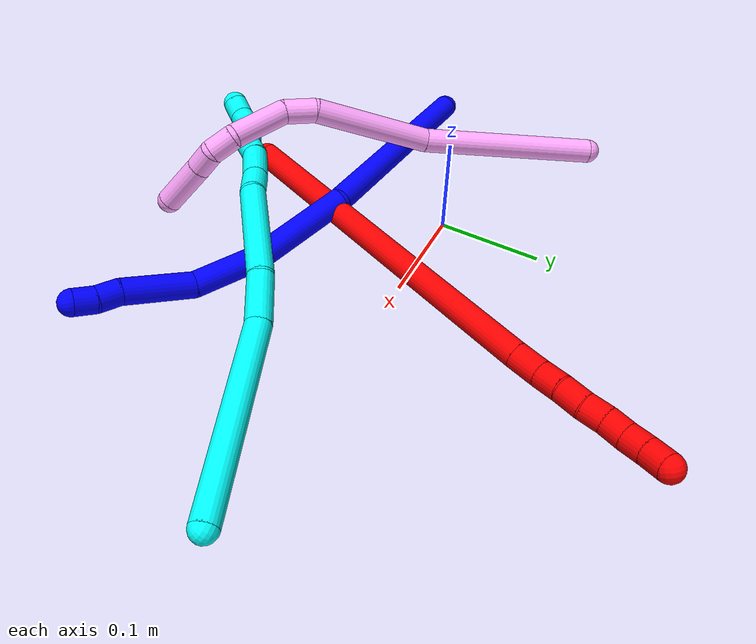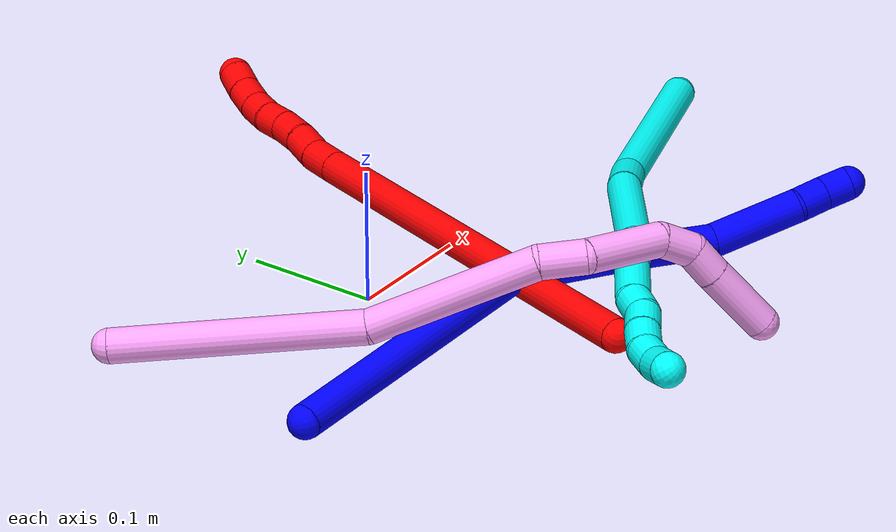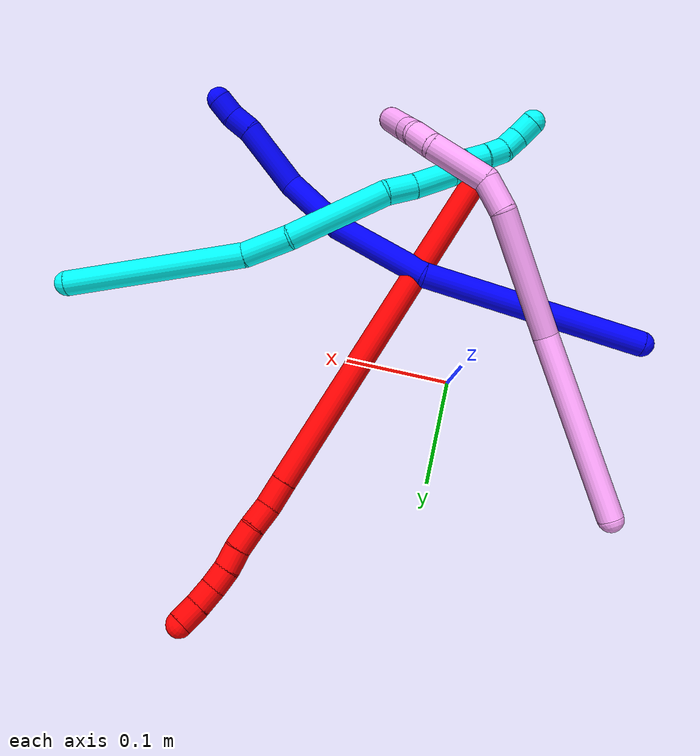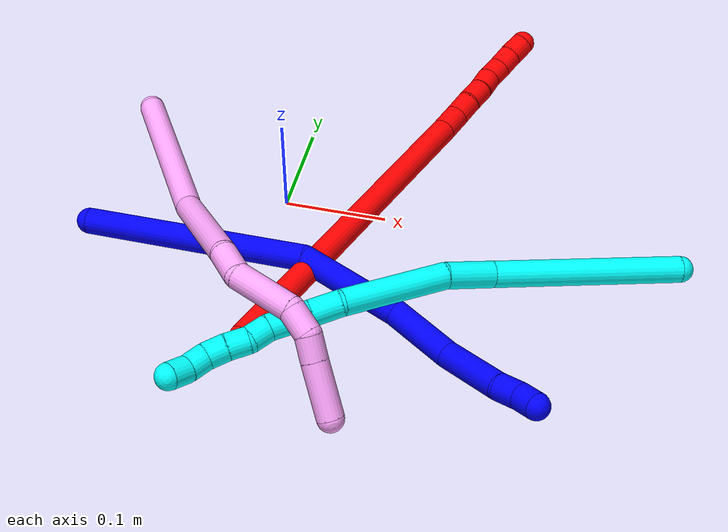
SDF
<sdf version="1.7">
 <world name="default">
  <plugin name="TubeGeneratorPlugin" filename="libtube_generator_plugin.so"/>
  <model name="photoneo_s_sensor">
   <static>1</static>
   <pose>0 0 2 1.57079 1.57079 3.14159</pose>
   <link name="link">
    <inertial><mass>0.1</mass></inertial>
    <sensor name="sensor" type="depth">
     <update_rate>30</update_rate>
     <camera>
      <horizontal_fov>1.22</horizontal_fov>
      <image><width>1920</width><height>1200</height><format>B8G8R8</format></image>
      <clip><near>0.1</near><far>4</far></clip>
      <depth_camera><output>points</output></depth_camera>
     </camera>
     <plugin name="camera_plugin" filename="libgazebo_ros_depth_camera.so">
      <baseline>0.2</baseline>
      <alwaysOn>1</alwaysOn>
      <updateRate>0.0</updateRate>
      <cameraName>camera_ir</cameraName>
      <imageTopicName>/camera/color/image_raw</imageTopicName>
      <cameraInfoTopicName>/camera/color/camera_info</cameraInfoTopicName>
      <depthImageTopicName>/camera/depth/image_raw</depthImageTopicName>
      <depthImageCameraInfoTopicName>/camera/depth/camera_info</depthImageCameraInfoTopicName>
      <pointCloudTopicName>/camera/depth/points</pointCloudTopicName>
      <frameName>fr_optical</frameName>
      <pointCloudCutoff>0.1</pointCloudCutoff>
      <pointCloudCutoffMax>2.0</pointCloudCutoffMax>
      <distortionK1>0</distortionK1>
      <distortionK2>0</distortionK2>
      <distortionK3>0</distortionK3>
      <distortionT1>0</distortionT1>
      <distortionT2>0</distortionT2>
      <CxPrime>0</CxPrime>
      <Cx>0</Cx>
      <Cy>0</Cy>
      <focalLength>0</focalLength>
      <hackBaseline>0</hackBaseline>
     </plugin>
    </sensor>
   </link>
  </model>
  <gravity>0 0 -9.8</gravity>
  <magnetic_field>6e-06 2.3e-05 -4.2e-05</magnetic_field>
  <atmosphere type="adiabatic"/>
  <physics name="default_physics" default="0" type="ode">
   <max_step_size>0.003</max_step_size>
   <real_time_factor>1</real_time_factor>
   <real_time_update_rate>1000</real_time_update_rate>
   <max_contacts>10000</max_contacts>
   <ode>
    <solver>
     <type>quick</type>
     <iters>100</iters>
     <sor>1.3</sor>
     <use_dynamic_moi_rescaling>0</use_dynamic_moi_rescaling>
    </solver>
    <constraints>
     <contact_max_correcting_vel>0</contact_max_correcting_vel>
     <contact_surface_layer>0.001</contact_surface_layer>
     <cfm>0</cfm>
     <erp>0.2</erp>
    </constraints>
   </ode>
  </physics>
  <scene><ambient>0.4 0.4 0.4 1</ambient><background>0.7 0.7 0.7 1</background><shadows>0</shadows></scene>
  <audio><device>default</device></audio>
  <spherical_coordinates>
   <surface_model>EARTH_WGS84</surface_model>
   <latitude_deg>0</latitude_deg>
   <longitude_deg>0</longitude_deg>
   <elevation>0</elevation>
   <heading_deg>0</heading_deg>
  </spherical_coordinates>
  <model name="bin">
   <static>1</static>
   <link name="bottom">
    <collision name="collision-bottom">
     <pose>0 0 -0.01 0 -0 0</pose>
     <geometry><box><size>0.8 0.6 0.02</size></box></geometry>
     <surface>
      <friction><ode><mu>100</mu><mu2>100</mu2></ode></friction>
      <contact><collide_bitmask>65535</collide_bitmask></contact>
     </surface>
    </collision>
   </link>
   <link name="west_wall">
    <collision name="collision-west_wall">
     <pose>-0.41 0 0.1 0 -0 0</pose>
     <geometry><box><size>0.02 0.6 0.2</size></box></geometry>
     <surface>
      <friction><ode><mu>100</mu><mu2>100</mu2></ode></friction>
      <contact><collide_bitmask>65535</collide_bitmask></contact>
     </surface>
    </collision>
   </link>
   <link name="east_wall">
    <collision name="collision-east_wall">
     <pose>0.41 0 0.1 0 -0 0</pose>
     <geometry><box><size>0.02 0.6 0.2</size></box></geometry>
     <surface>
      <friction><ode><mu>100</mu><mu2>100</mu2></ode></friction>
      <contact><collide_bitmask>65535</collide_bitmask></contact>
     </surface>
    </collision>
   </link>
   <link name="south_wall">
    <collision name="collision-south_wall">
     <pose>0 -0.31 0.1 0 -0 0</pose>
     <geometry><box><size>0.8 0.02 0.2</size></box></geometry>
     <surface>
      <friction><ode><mu>100</mu><mu2>100</mu2></ode></friction>
      <contact><collide_bitmask>65535</collide_bitmask></contact>
     </surface>
    </collision>
   </link>
   <link name="north_wall">
    <collision name="collision-north_wall">
     <pose>0 0.31 0.1 0 -0 0</pose>
     <geometry><box><size>0.8 0.02 0.2</size></box></geometry>
     <surface>
      <friction><ode><mu>100</mu><mu2>100</mu2></ode></friction>
      <contact><collide_bitmask>65535</collide_bitmask></contact>
     </surface>
    </collision>
   </link>
  </model>
  <model name="1">
   <static>0</static>
   <link name="1">
    <collision name="collision-cylinder-e_1_1_4">
     <pose>0.050739 -0.030626 0.093747 0.315758 0.475161 0.077066</pose>
     <geometry><cylinder><radius>0.0125</radius><length>0.22182</length></cylinder></geometry>
     <surface>
      <friction><ode><mu>1.16</mu><mu2>1.16</mu2><slip1>0</slip1><slip2>0</slip2></ode></friction>
      <contact><ode><kp>1e+06</kp><kd>1</kd><max_vel>0</max_vel><min_depth>0.001</min_depth></ode></contact>
     </surface>
    </collision>
    <visual name="visual-cylinder-e_1_1_4">
     <pose>0.050739 -0.030626 0.093747 0.315758 0.475161 0.077066</pose>
     <geometry><cylinder><radius>0.0125</radius><length>0.22182</length></cylinder></geometry>
     <material><ambient>0 0 1 1</ambient></material>
    </visual>
    <collision name="collision-cylinder-e_2_4_5">
     <pose>0.108204 -0.079982 0.234244 0.381054 0.132754 0.02564</pose>
     <geometry><cylinder><radius>0.0125</radius><length>0.101618</length></cylinder></geometry>
     <surface>
      <friction><ode><mu>1.16</mu><mu2>1.16</mu2><slip1>0</slip1><slip2>0</slip2></ode></friction>
      <contact><ode><kp>1e+06</kp><kd>1</kd><max_vel>0</max_vel><min_depth>0.001</min_depth></ode></contact>
     </surface>
    </collision>
    <visual name="visual-cylinder-e_2_4_5">
     <pose>0.108204 -0.079982 0.234244 0.381054 0.132754 0.02564</pose>
     <geometry><cylinder><radius>0.0125</radius><length>0.101618</length></cylinder></geometry>
     <material><ambient>0 0 1 1</ambient></material>
    </visual>
    <collision name="collision-cylinder-e_3_5_6">
     <pose>0.114311 -0.105829 0.313309 0.216801 -0.018674 -0.002032</pose>
     <geometry><cylinder><radius>0.0125</radius><length>0.066192</length></cylinder></geometry>
     <surface>
      <friction><ode><mu>1.16</mu><mu2>1.16</mu2><slip1>0</slip1><slip2>0</slip2></ode></friction>
      <contact><ode><kp>1e+06</kp><kd>1</kd><max_vel>0</max_vel><min_depth>0.001</min_depth></ode></contact>
     </surface>
    </collision>
    <visual name="visual-cylinder-e_3_5_6">
     <pose>0.114311 -0.105829 0.313309 0.216801 -0.018674 -0.002032</pose>
     <geometry><cylinder><radius>0.0125</radius><length>0.066192</length></cylinder></geometry>
     <material><ambient>0 0 1 1</ambient></material>
    </visual>
    <collision name="collision-cylinder-e_4_6_7">
     <pose>0.115019 -0.108582 0.379279 -0.128978 0.039044 -0.002522</pose>
     <geometry><cylinder><radius>0.0125</radius><length>0.067923</length></cylinder></geometry>
     <surface>
      <friction><ode><mu>1.16</mu><mu2>1.16</mu2><slip1>0</slip1><slip2>0</slip2></ode></friction>
      <contact><ode><kp>1e+06</kp><kd>1</kd><max_vel>0</max_vel><min_depth>0.001</min_depth></ode></contact>
     </surface>
    </collision>
    <visual name="visual-cylinder-e_4_6_7">
     <pose>0.115019 -0.108582 0.379279 -0.128978 0.039044 -0.002522</pose>
     <geometry><cylinder><radius>0.0125</radius><length>0.067923</length></cylinder></geometry>
     <material><ambient>0 0 1 1</ambient></material>
    </visual>
    <collision name="collision-cylinder-e_5_7_8">
     <pose>0.118451 -0.104849 0.423755 0.058264 0.1919 0.005609</pose>
     <geometry><cylinder><radius>0.0125</radius><length>0.022088</length></cylinder></geometry>
     <surface>
      <friction><ode><mu>1.16</mu><mu2>1.16</mu2><slip1>0</slip1><slip2>0</slip2></ode></friction>
      <contact><ode><kp>1e+06</kp><kd>1</kd><max_vel>0</max_vel><min_depth>0.001</min_depth></ode></contact>
     </surface>
    </collision>
    <visual name="visual-cylinder-e_5_7_8">
     <pose>0.118451 -0.104849 0.423755 0.058264 0.1919 0.005609</pose>
     <geometry><cylinder><radius>0.0125</radius><length>0.022088</length></cylinder></geometry>
     <material><ambient>0 0 1 1</ambient></material>
    </visual>
    <collision name="collision-cylinder-e_6_8_2">
     <pose>0.121071 -0.104326 0.444679 -0.113821 0.050502 -0.002878</pose>
     <geometry><cylinder><radius>0.0125</radius><length>0.020359</length></cylinder></geometry>
     <surface>
      <friction><ode><mu>1.16</mu><mu2>1.16</mu2><slip1>0</slip1><slip2>0</slip2></ode></friction>
      <contact><ode><kp>1e+06</kp><kd>1</kd><max_vel>0</max_vel><min_depth>0.001</min_depth></ode></contact>
     </surface>
    </collision>
    <visual name="visual-cylinder-e_6_8_2">
     <pose>0.121071 -0.104326 0.444679 -0.113821 0.050502 -0.002878</pose>
     <geometry><cylinder><radius>0.0125</radius><length>0.020359</length></cylinder></geometry>
     <material><ambient>0 0 1 1</ambient></material>
    </visual>
    <collision name="collision-sphere-2">
     <pose>0.121585 -0.103171 0.45478 0 -0 0</pose>
     <geometry><sphere><radius>0.0125</radius></sphere></geometry>
     <surface>
      <friction><ode><mu>1.16</mu><mu2>1.16</mu2><slip1>0</slip1><slip2>0</slip2></ode></friction>
      <contact><ode><kp>1e+06</kp><kd>1</kd><max_vel>0</max_vel><min_depth>0.001</min_depth></ode></contact>
     </surface>
    </collision>
    <visual name="visual-sphere-2">
     <pose>0.121585 -0.103171 0.45478 0 -0 0</pose>
     <geometry><sphere><radius>0.0125</radius></sphere></geometry>
     <material><ambient>0 0 1 1</ambient></material>
    </visual>
    <collision name="collision-sphere-4">
     <pose>0.101478 -0.061252 0.187495 0 -0 0</pose>
     <geometry><sphere><radius>0.0125</radius></sphere></geometry>
     <surface>
      <friction><ode><mu>1.16</mu><mu2>1.16</mu2><slip1>0</slip1><slip2>0</slip2></ode></friction>
      <contact><ode><kp>1e+06</kp><kd>1</kd><max_vel>0</max_vel><min_depth>0.001</min_depth></ode></contact>
     </surface>
    </collision>
    <visual name="visual-sphere-4">
     <pose>0.101478 -0.061252 0.187495 0 -0 0</pose>
     <geometry><sphere><radius>0.0125</radius></sphere></geometry>
     <material><ambient>0 0 1 1</ambient></material>
    </visual>
    <collision name="collision-sphere-1">
     <geometry><sphere><radius>0.0125</radius></sphere></geometry>
     <surface>
      <friction><ode><mu>1.16</mu><mu2>1.16</mu2><slip1>0</slip1><slip2>0</slip2></ode></friction>
      <contact><ode><kp>1e+06</kp><kd>1</kd><max_vel>0</max_vel><min_depth>0.001</min_depth></ode></contact>
     </surface>
    </collision>
    <visual name="visual-sphere-1">
     <geometry><sphere><radius>0.0125</radius></sphere></geometry>
     <material><ambient>0 0 1 1</ambient></material>
    </visual>
    <collision name="collision-sphere-8">
     <pose>0.120557 -0.10548 0.434578 0 -0 0</pose>
     <geometry><sphere><radius>0.0125</radius></sphere></geometry>
     <surface>
      <friction><ode><mu>1.16</mu><mu2>1.16</mu2><slip1>0</slip1><slip2>0</slip2></ode></friction>
      <contact><ode><kp>1e+06</kp><kd>1</kd><max_vel>0</max_vel><min_depth>0.001</min_depth></ode></contact>
     </surface>
    </collision>
    <visual name="visual-sphere-8">
     <pose>0.120557 -0.10548 0.434578 0 -0 0</pose>
     <geometry><sphere><radius>0.0125</radius></sphere></geometry>
     <material><ambient>0 0 1 1</ambient></material>
    </visual>
    <collision name="collision-sphere-5">
     <pose>0.114929 -0.098711 0.280994 0 -0 0</pose>
     <geometry><sphere><radius>0.0125</radius></sphere></geometry>
     <surface>
      <friction><ode><mu>1.16</mu><mu2>1.16</mu2><slip1>0</slip1><slip2>0</slip2></ode></friction>
      <contact><ode><kp>1e+06</kp><kd>1</kd><max_vel>0</max_vel><min_depth>0.001</min_depth></ode></contact>
     </surface>
    </collision>
    <visual name="visual-sphere-5">
     <pose>0.114929 -0.098711 0.280994 0 -0 0</pose>
     <geometry><sphere><radius>0.0125</radius></sphere></geometry>
     <material><ambient>0 0 1 1</ambient></material>
    </visual>
    <collision name="collision-sphere-6">
     <pose>0.113693 -0.112947 0.345625 0 -0 0</pose>
     <geometry><sphere><radius>0.0125</radius></sphere></geometry>
     <surface>
      <friction><ode><mu>1.16</mu><mu2>1.16</mu2><slip1>0</slip1><slip2>0</slip2></ode></friction>
      <contact><ode><kp>1e+06</kp><kd>1</kd><max_vel>0</max_vel><min_depth>0.001</min_depth></ode></contact>
     </surface>
    </collision>
    <visual name="visual-sphere-6">
     <pose>0.113693 -0.112947 0.345625 0 -0 0</pose>
     <geometry><sphere><radius>0.0125</radius></sphere></geometry>
     <material><ambient>0 0 1 1</ambient></material>
    </visual>
    <collision name="collision-sphere-7">
     <pose>0.116344 -0.104218 0.412932 0 -0 0</pose>
     <geometry><sphere><radius>0.0125</radius></sphere></geometry>
     <surface>
      <friction><ode><mu>1.16</mu><mu2>1.16</mu2><slip1>0</slip1><slip2>0</slip2></ode></friction>
      <contact><ode><kp>1e+06</kp><kd>1</kd><max_vel>0</max_vel><min_depth>0.001</min_depth></ode></contact>
     </surface>
    </collision>
    <visual name="visual-sphere-7">
     <pose>0.116344 -0.104218 0.412932 0 -0 0</pose>
     <geometry><sphere><radius>0.0125</radius></sphere></geometry>
     <material><ambient>0 0 1 1</ambient></material>
    </visual>
    <inertial>
     <pose>0.085421 -0.067483 0.219024 0 -0 0</pose>
     <mass>0.5</mass>
     <inertia>
      <ixx>0.001038</ixx>
      <ixy>0</ixy>
      <ixz>0</ixz>
      <iyy>0.00108</iyy>
      <iyz>0</iyz>
      <izz>-0.000108</izz>
     </inertia>
    </inertial>
   </link>
   <pose>-0.175721 -0.07811 0.01149 1.40634 -0.449482 1.007</pose>
  </model>
  <model name="2">
   <static>0</static>
   <link name="2">
    <collision name="collision-cylinder-e_1_1_4">
     <pose>-0.063031 0.119216 0.108255 -0.833544 -0.373085 0.166723</pose>
     <geometry><cylinder><radius>0.0125</radius><length>0.345859</length></cylinder></geometry>
     <surface>
      <friction><ode><mu>1.16</mu><mu2>1.16</mu2><slip1>0</slip1><slip2>0</slip2></ode></friction>
      <contact><ode><kp>1e+06</kp><kd>1</kd><max_vel>0</max_vel><min_depth>0.001</min_depth></ode></contact>
     </surface>
    </collision>
    <visual name="visual-cylinder-e_1_1_4">
     <pose>-0.063031 0.119216 0.108255 -0.833544 -0.373085 0.166723</pose>
     <geometry><cylinder><radius>0.0125</radius><length>0.345859</length></cylinder></geometry>
     <material><ambient>1 0 0 1</ambient></material>
    </visual>
    <collision name="collision-cylinder-e_2_4_5">
     <pose>-0.131091 0.247935 0.224534 -0.869705 -0.384253 0.180228</pose>
     <geometry><cylinder><radius>0.0125</radius><length>0.026832</length></cylinder></geometry>
     <surface>
      <friction><ode><mu>1.16</mu><mu2>1.16</mu2><slip1>0</slip1><slip2>0</slip2></ode></friction>
      <contact><ode><kp>1e+06</kp><kd>1</kd><max_vel>0</max_vel><min_depth>0.001</min_depth></ode></contact>
     </surface>
    </collision>
    <visual name="visual-cylinder-e_2_4_5">
     <pose>-0.131091 0.247935 0.224534 -0.869705 -0.384253 0.180228</pose>
     <geometry><cylinder><radius>0.0125</radius><length>0.026832</length></cylinder></geometry>
     <material><ambient>1 0 0 1</ambient></material>
    </visual>
    <collision name="collision-cylinder-e_3_5_6">
     <pose>-0.142287 0.265499 0.238066 -0.971217 -0.563404 0.303123</pose>
     <geometry><cylinder><radius>0.0125</radius><length>0.023094</length></cylinder></geometry>
     <surface>
      <friction><ode><mu>1.16</mu><mu2>1.16</mu2><slip1>0</slip1><slip2>0</slip2></ode></friction>
      <contact><ode><kp>1e+06</kp><kd>1</kd><max_vel>0</max_vel><min_depth>0.001</min_depth></ode></contact>
     </surface>
    </collision>
    <visual name="visual-cylinder-e_3_5_6">
     <pose>-0.142287 0.265499 0.238066 -0.971217 -0.563404 0.303123</pose>
     <geometry><cylinder><radius>0.0125</radius><length>0.023094</length></cylinder></geometry>
     <material><ambient>1 0 0 1</ambient></material>
    </visual>
    <collision name="collision-cylinder-e_4_6_7">
     <pose>-0.153435 0.281506 0.250286 -0.869521 -0.446538 0.210109</pose>
     <geometry><cylinder><radius>0.0125</radius><length>0.023067</length></cylinder></geometry>
     <surface>
      <friction><ode><mu>1.16</mu><mu2>1.16</mu2><slip1>0</slip1><slip2>0</slip2></ode></friction>
      <contact><ode><kp>1e+06</kp><kd>1</kd><max_vel>0</max_vel><min_depth>0.001</min_depth></ode></contact>
     </surface>
    </collision>
    <visual name="visual-cylinder-e_4_6_7">
     <pose>-0.153435 0.281506 0.250286 -0.869521 -0.446538 0.210109</pose>
     <geometry><cylinder><radius>0.0125</radius><length>0.023067</length></cylinder></geometry>
     <material><ambient>1 0 0 1</ambient></material>
    </visual>
    <collision name="collision-cylinder-e_5_7_8">
     <pose>-0.161722 0.297196 0.262667 -0.938715 -0.331875 0.169468</pose>
     <geometry><cylinder><radius>0.0125</radius><length>0.0203</length></cylinder></geometry>
     <surface>
      <friction><ode><mu>1.16</mu><mu2>1.16</mu2><slip1>0</slip1><slip2>0</slip2></ode></friction>
      <contact><ode><kp>1e+06</kp><kd>1</kd><max_vel>0</max_vel><min_depth>0.001</min_depth></ode></contact>
     </surface>
    </collision>
    <visual name="visual-cylinder-e_5_7_8">
     <pose>-0.161722 0.297196 0.262667 -0.938715 -0.331875 0.169468</pose>
     <geometry><cylinder><radius>0.0125</radius><length>0.0203</length></cylinder></geometry>
     <material><ambient>1 0 0 1</ambient></material>
    </visual>
    <collision name="collision-cylinder-e_6_8_9">
     <pose>-0.1698 0.311718 0.274048 -0.870801 -0.493665 0.233355</pose>
     <geometry><cylinder><radius>0.0125</radius><length>0.020134</length></cylinder></geometry>
     <surface>
      <friction><ode><mu>1.16</mu><mu2>1.16</mu2><slip1>0</slip1><slip2>0</slip2></ode></friction>
      <contact><ode><kp>1e+06</kp><kd>1</kd><max_vel>0</max_vel><min_depth>0.001</min_depth></ode></contact>
     </surface>
    </collision>
    <visual name="visual-cylinder-e_6_8_9">
     <pose>-0.1698 0.311718 0.274048 -0.870801 -0.493665 0.233355</pose>
     <geometry><cylinder><radius>0.0125</radius><length>0.020134</length></cylinder></geometry>
     <material><ambient>1 0 0 1</ambient></material>
    </visual>
    <collision name="collision-cylinder-e_7_9_10">
     <pose>-0.18067 0.325363 0.28413 -1.00371 -0.643244 0.361659</pose>
     <geometry><cylinder><radius>0.0125</radius><length>0.02034</length></cylinder></geometry>
     <surface>
      <friction><ode><mu>1.16</mu><mu2>1.16</mu2><slip1>0</slip1><slip2>0</slip2></ode></friction>
      <contact><ode><kp>1e+06</kp><kd>1</kd><max_vel>0</max_vel><min_depth>0.001</min_depth></ode></contact>
     </surface>
    </collision>
    <visual name="visual-cylinder-e_7_9_10">
     <pose>-0.18067 0.325363 0.28413 -1.00371 -0.643244 0.361659</pose>
     <geometry><cylinder><radius>0.0125</radius><length>0.02034</length></cylinder></geometry>
     <material><ambient>1 0 0 1</ambient></material>
    </visual>
    <collision name="collision-cylinder-e_8_10_2">
     <pose>-0.193554 0.338561 0.292701 -0.985392 -0.728737 0.403929</pose>
     <geometry><cylinder><radius>0.0125</radius><length>0.020375</length></cylinder></geometry>
     <surface>
      <friction><ode><mu>1.16</mu><mu2>1.16</mu2><slip1>0</slip1><slip2>0</slip2></ode></friction>
      <contact><ode><kp>1e+06</kp><kd>1</kd><max_vel>0</max_vel><min_depth>0.001</min_depth></ode></contact>
     </surface>
    </collision>
    <visual name="visual-cylinder-e_8_10_2">
     <pose>-0.193554 0.338561 0.292701 -0.985392 -0.728737 0.403929</pose>
     <geometry><cylinder><radius>0.0125</radius><length>0.020375</length></cylinder></geometry>
     <material><ambient>1 0 0 1</ambient></material>
    </visual>
    <collision name="collision-sphere-2">
     <pose>-0.200338 0.344896 0.2969 0 -0 0</pose>
     <geometry><sphere><radius>0.0125</radius></sphere></geometry>
     <surface>
      <friction><ode><mu>1.16</mu><mu2>1.16</mu2><slip1>0</slip1><slip2>0</slip2></ode></friction>
      <contact><ode><kp>1e+06</kp><kd>1</kd><max_vel>0</max_vel><min_depth>0.001</min_depth></ode></contact>
     </surface>
    </collision>
    <visual name="visual-sphere-2">
     <pose>-0.200338 0.344896 0.2969 0 -0 0</pose>
     <geometry><sphere><radius>0.0125</radius></sphere></geometry>
     <material><ambient>1 0 0 1</ambient></material>
    </visual>
    <collision name="collision-sphere-10">
     <pose>-0.18677 0.332227 0.288501 0 -0 0</pose>
     <geometry><sphere><radius>0.0125</radius></sphere></geometry>
     <surface>
      <friction><ode><mu>1.16</mu><mu2>1.16</mu2><slip1>0</slip1><slip2>0</slip2></ode></friction>
      <contact><ode><kp>1e+06</kp><kd>1</kd><max_vel>0</max_vel><min_depth>0.001</min_depth></ode></contact>
     </surface>
    </collision>
    <visual name="visual-sphere-10">
     <pose>-0.18677 0.332227 0.288501 0 -0 0</pose>
     <geometry><sphere><radius>0.0125</radius></sphere></geometry>
     <material><ambient>1 0 0 1</ambient></material>
    </visual>
    <collision name="collision-sphere-9">
     <pose>-0.17457 0.318499 0.279759 0 -0 0</pose>
     <geometry><sphere><radius>0.0125</radius></sphere></geometry>
     <surface>
      <friction><ode><mu>1.16</mu><mu2>1.16</mu2><slip1>0</slip1><slip2>0</slip2></ode></friction>
      <contact><ode><kp>1e+06</kp><kd>1</kd><max_vel>0</max_vel><min_depth>0.001</min_depth></ode></contact>
     </surface>
    </collision>
    <visual name="visual-sphere-9">
     <pose>-0.17457 0.318499 0.279759 0 -0 0</pose>
     <geometry><sphere><radius>0.0125</radius></sphere></geometry>
     <material><ambient>1 0 0 1</ambient></material>
    </visual>
    <collision name="collision-sphere-4">
     <pose>-0.126062 0.238431 0.216511 0 -0 0</pose>
     <geometry><sphere><radius>0.0125</radius></sphere></geometry>
     <surface>
      <friction><ode><mu>1.16</mu><mu2>1.16</mu2><slip1>0</slip1><slip2>0</slip2></ode></friction>
      <contact><ode><kp>1e+06</kp><kd>1</kd><max_vel>0</max_vel><min_depth>0.001</min_depth></ode></contact>
     </surface>
    </collision>
    <visual name="visual-sphere-4">
     <pose>-0.126062 0.238431 0.216511 0 -0 0</pose>
     <geometry><sphere><radius>0.0125</radius></sphere></geometry>
     <material><ambient>1 0 0 1</ambient></material>
    </visual>
    <collision name="collision-sphere-1">
     <geometry><sphere><radius>0.0125</radius></sphere></geometry>
     <surface>
      <friction><ode><mu>1.16</mu><mu2>1.16</mu2><slip1>0</slip1><slip2>0</slip2></ode></friction>
      <contact><ode><kp>1e+06</kp><kd>1</kd><max_vel>0</max_vel><min_depth>0.001</min_depth></ode></contact>
     </surface>
    </collision>
    <visual name="visual-sphere-1">
     <geometry><sphere><radius>0.0125</radius></sphere></geometry>
     <material><ambient>1 0 0 1</ambient></material>
    </visual>
    <collision name="collision-sphere-8">
     <pose>-0.165029 0.304938 0.268337 0 -0 0</pose>
     <geometry><sphere><radius>0.0125</radius></sphere></geometry>
     <surface>
      <friction><ode><mu>1.16</mu><mu2>1.16</mu2><slip1>0</slip1><slip2>0</slip2></ode></friction>
      <contact><ode><kp>1e+06</kp><kd>1</kd><max_vel>0</max_vel><min_depth>0.001</min_depth></ode></contact>
     </surface>
    </collision>
    <visual name="visual-sphere-8">
     <pose>-0.165029 0.304938 0.268337 0 -0 0</pose>
     <geometry><sphere><radius>0.0125</radius></sphere></geometry>
     <material><ambient>1 0 0 1</ambient></material>
    </visual>
    <collision name="collision-sphere-5">
     <pose>-0.136121 0.25744 0.232557 0 -0 0</pose>
     <geometry><sphere><radius>0.0125</radius></sphere></geometry>
     <surface>
      <friction><ode><mu>1.16</mu><mu2>1.16</mu2><slip1>0</slip1><slip2>0</slip2></ode></friction>
      <contact><ode><kp>1e+06</kp><kd>1</kd><max_vel>0</max_vel><min_depth>0.001</min_depth></ode></contact>
     </surface>
    </collision>
    <visual name="visual-sphere-5">
     <pose>-0.136121 0.25744 0.232557 0 -0 0</pose>
     <geometry><sphere><radius>0.0125</radius></sphere></geometry>
     <material><ambient>1 0 0 1</ambient></material>
    </visual>
    <collision name="collision-sphere-6">
     <pose>-0.148454 0.273559 0.243575 0 -0 0</pose>
     <geometry><sphere><radius>0.0125</radius></sphere></geometry>
     <surface>
      <friction><ode><mu>1.16</mu><mu2>1.16</mu2><slip1>0</slip1><slip2>0</slip2></ode></friction>
      <contact><ode><kp>1e+06</kp><kd>1</kd><max_vel>0</max_vel><min_depth>0.001</min_depth></ode></contact>
     </surface>
    </collision>
    <visual name="visual-sphere-6">
     <pose>-0.148454 0.273559 0.243575 0 -0 0</pose>
     <geometry><sphere><radius>0.0125</radius></sphere></geometry>
     <material><ambient>1 0 0 1</ambient></material>
    </visual>
    <collision name="collision-sphere-7">
     <pose>-0.158415 0.289454 0.256998 0 -0 0</pose>
     <geometry><sphere><radius>0.0125</radius></sphere></geometry>
     <surface>
      <friction><ode><mu>1.16</mu><mu2>1.16</mu2><slip1>0</slip1><slip2>0</slip2></ode></friction>
      <contact><ode><kp>1e+06</kp><kd>1</kd><max_vel>0</max_vel><min_depth>0.001</min_depth></ode></contact>
     </surface>
    </collision>
    <visual name="visual-sphere-7">
     <pose>-0.158415 0.289454 0.256998 0 -0 0</pose>
     <geometry><sphere><radius>0.0125</radius></sphere></geometry>
     <material><ambient>1 0 0 1</ambient></material>
    </visual>
    <inertial>
     <pose>-0.092925 0.172669 0.154659 0 -0 0</pose>
     <mass>0.5</mass>
     <inertia>
      <ixx>0.003711</ixx>
      <ixy>0</ixy>
      <ixz>0</ixz>
      <iyy>0.003023</iyy>
      <iyz>0</iyz>
      <izz>-0.001104</izz>
     </inertia>
    </inertial>
   </link>
   <pose>0.016408 -0.197929 0.027085 2.75107 0.629282 -2.98104</pose>
  </model>
  <model name="3">
   <static>0</static>
   <link name="3">
    <collision name="collision-cylinder-e_1_1_4">
     <pose>-0.026108 -0.085653 -0.009493 1.68117 -0.294162 -0.327982</pose>
     <geometry><cylinder><radius>0.0125</radius><length>0.180091</length></cylinder></geometry>
     <surface>
      <friction><ode><mu>1.16</mu><mu2>1.16</mu2><slip1>0</slip1><slip2>0</slip2></ode></friction>
      <contact><ode><kp>1e+06</kp><kd>1</kd><max_vel>0</max_vel><min_depth>0.001</min_depth></ode></contact>
     </surface>
    </collision>
    <visual name="visual-cylinder-e_1_1_4">
     <pose>-0.026108 -0.085653 -0.009493 1.68117 -0.294162 -0.327982</pose>
     <geometry><cylinder><radius>0.0125</radius><length>0.180091</length></cylinder></geometry>
     <material><ambient>0.003922 1 0.996078 1</ambient></material>
    </visual>
    <collision name="collision-cylinder-e_2_4_5">
     <pose>-0.057908 -0.193172 -0.026797 1.91392 -0.240425 -0.339554</pose>
     <geometry><cylinder><radius>0.0125</radius><length>0.047814</length></cylinder></geometry>
     <surface>
      <friction><ode><mu>1.16</mu><mu2>1.16</mu2><slip1>0</slip1><slip2>0</slip2></ode></friction>
      <contact><ode><kp>1e+06</kp><kd>1</kd><max_vel>0</max_vel><min_depth>0.001</min_depth></ode></contact>
     </surface>
    </collision>
    <visual name="visual-cylinder-e_2_4_5">
     <pose>-0.057908 -0.193172 -0.026797 1.91392 -0.240425 -0.339554</pose>
     <geometry><cylinder><radius>0.0125</radius><length>0.047814</length></cylinder></geometry>
     <material><ambient>0.003922 1 0.996078 1</ambient></material>
    </visual>
    <collision name="collision-cylinder-e_3_5_6">
     <pose>-0.085901 -0.257844 -0.051342 1.94344 -0.451748 -0.649301</pose>
     <geometry><cylinder><radius>0.0125</radius><length>0.102171</length></cylinder></geometry>
     <surface>
      <friction><ode><mu>1.16</mu><mu2>1.16</mu2><slip1>0</slip1><slip2>0</slip2></ode></friction>
      <contact><ode><kp>1e+06</kp><kd>1</kd><max_vel>0</max_vel><min_depth>0.001</min_depth></ode></contact>
     </surface>
    </collision>
    <visual name="visual-cylinder-e_3_5_6">
     <pose>-0.085901 -0.257844 -0.051342 1.94344 -0.451748 -0.649301</pose>
     <geometry><cylinder><radius>0.0125</radius><length>0.102171</length></cylinder></geometry>
     <material><ambient>0.003922 1 0.996078 1</ambient></material>
    </visual>
    <collision name="collision-cylinder-e_4_6_7">
     <pose>-0.116412 -0.31257 -0.069238 1.668 -0.600992 -0.658283</pose>
     <geometry><cylinder><radius>0.0125</radius><length>0.029039</length></cylinder></geometry>
     <surface>
      <friction><ode><mu>1.16</mu><mu2>1.16</mu2><slip1>0</slip1><slip2>0</slip2></ode></friction>
      <contact><ode><kp>1e+06</kp><kd>1</kd><max_vel>0</max_vel><min_depth>0.001</min_depth></ode></contact>
     </surface>
    </collision>
    <visual name="visual-cylinder-e_4_6_7">
     <pose>-0.116412 -0.31257 -0.069238 1.668 -0.600992 -0.658283</pose>
     <geometry><cylinder><radius>0.0125</radius><length>0.029039</length></cylinder></geometry>
     <material><ambient>0.003922 1 0.996078 1</ambient></material>
    </visual>
    <collision name="collision-cylinder-e_5_7_8">
     <pose>-0.135502 -0.340931 -0.07415 1.79503 -0.57292 -0.707541</pose>
     <geometry><cylinder><radius>0.0125</radius><length>0.04014</length></cylinder></geometry>
     <surface>
      <friction><ode><mu>1.16</mu><mu2>1.16</mu2><slip1>0</slip1><slip2>0</slip2></ode></friction>
      <contact><ode><kp>1e+06</kp><kd>1</kd><max_vel>0</max_vel><min_depth>0.001</min_depth></ode></contact>
     </surface>
    </collision>
    <visual name="visual-cylinder-e_5_7_8">
     <pose>-0.135502 -0.340931 -0.07415 1.79503 -0.57292 -0.707541</pose>
     <geometry><cylinder><radius>0.0125</radius><length>0.04014</length></cylinder></geometry>
     <material><ambient>0.003922 1 0.996078 1</ambient></material>
    </visual>
    <collision name="collision-cylinder-e_6_8_9">
     <pose>-0.152873 -0.363825 -0.082259 2.16507 -0.695018 -1.19698</pose>
     <geometry><cylinder><radius>0.0125</radius><length>0.020272</length></cylinder></geometry>
     <surface>
      <friction><ode><mu>1.16</mu><mu2>1.16</mu2><slip1>0</slip1><slip2>0</slip2></ode></friction>
      <contact><ode><kp>1e+06</kp><kd>1</kd><max_vel>0</max_vel><min_depth>0.001</min_depth></ode></contact>
     </surface>
    </collision>
    <visual name="visual-cylinder-e_6_8_9">
     <pose>-0.152873 -0.363825 -0.082259 2.16507 -0.695018 -1.19698</pose>
     <geometry><cylinder><radius>0.0125</radius><length>0.020272</length></cylinder></geometry>
     <material><ambient>0.003922 1 0.996078 1</ambient></material>
    </visual>
    <collision name="collision-cylinder-e_7_9_10">
     <pose>-0.16478 -0.378723 -0.088033 1.73668 -0.563801 -0.659295</pose>
     <geometry><cylinder><radius>0.0125</radius><length>0.020269</length></cylinder></geometry>
     <surface>
      <friction><ode><mu>1.16</mu><mu2>1.16</mu2><slip1>0</slip1><slip2>0</slip2></ode></friction>
      <contact><ode><kp>1e+06</kp><kd>1</kd><max_vel>0</max_vel><min_depth>0.001</min_depth></ode></contact>
     </surface>
    </collision>
    <visual name="visual-cylinder-e_7_9_10">
     <pose>-0.16478 -0.378723 -0.088033 1.73668 -0.563801 -0.659295</pose>
     <geometry><cylinder><radius>0.0125</radius><length>0.020269</length></cylinder></geometry>
     <material><ambient>0.003922 1 0.996078 1</ambient></material>
    </visual>
    <collision name="collision-cylinder-e_8_10_11">
     <pose>-0.176408 -0.394848 -0.091189 1.79397 -0.66812 -0.820052</pose>
     <geometry><cylinder><radius>0.0125</radius><length>0.020055</length></cylinder></geometry>
     <surface>
      <friction><ode><mu>1.16</mu><mu2>1.16</mu2><slip1>0</slip1><slip2>0</slip2></ode></friction>
      <contact><ode><kp>1e+06</kp><kd>1</kd><max_vel>0</max_vel><min_depth>0.001</min_depth></ode></contact>
     </surface>
    </collision>
    <visual name="visual-cylinder-e_8_10_11">
     <pose>-0.176408 -0.394848 -0.091189 1.79397 -0.66812 -0.820052</pose>
     <geometry><cylinder><radius>0.0125</radius><length>0.020055</length></cylinder></geometry>
     <material><ambient>0.003922 1 0.996078 1</ambient></material>
    </visual>
    <collision name="collision-cylinder-e_9_11_12">
     <pose>-0.188918 -0.40857 -0.097885 2.25717 -0.678235 -1.28058</pose>
     <geometry><cylinder><radius>0.0125</radius><length>0.020075</length></cylinder></geometry>
     <surface>
      <friction><ode><mu>1.16</mu><mu2>1.16</mu2><slip1>0</slip1><slip2>0</slip2></ode></friction>
      <contact><ode><kp>1e+06</kp><kd>1</kd><max_vel>0</max_vel><min_depth>0.001</min_depth></ode></contact>
     </surface>
    </collision>
    <visual name="visual-cylinder-e_9_11_12">
     <pose>-0.188918 -0.40857 -0.097885 2.25717 -0.678235 -1.28058</pose>
     <geometry><cylinder><radius>0.0125</radius><length>0.020075</length></cylinder></geometry>
     <material><ambient>0.003922 1 0.996078 1</ambient></material>
    </visual>
    <collision name="collision-cylinder-e_10_12_2">
     <pose>-0.198941 -0.421349 -0.109282 2.33426 -0.380308 -0.84678</pose>
     <geometry><cylinder><radius>0.0125</radius><length>0.020074</length></cylinder></geometry>
     <surface>
      <friction><ode><mu>1.16</mu><mu2>1.16</mu2><slip1>0</slip1><slip2>0</slip2></ode></friction>
      <contact><ode><kp>1e+06</kp><kd>1</kd><max_vel>0</max_vel><min_depth>0.001</min_depth></ode></contact>
     </surface>
    </collision>
    <visual name="visual-cylinder-e_10_12_2">
     <pose>-0.198941 -0.421349 -0.109282 2.33426 -0.380308 -0.84678</pose>
     <geometry><cylinder><radius>0.0125</radius><length>0.020074</length></cylinder></geometry>
     <material><ambient>0.003922 1 0.996078 1</ambient></material>
    </visual>
    <collision name="collision-sphere-2">
     <pose>-0.202667 -0.428083 -0.115726 0 -0 0</pose>
     <geometry><sphere><radius>0.0125</radius></sphere></geometry>
     <surface>
      <friction><ode><mu>1.16</mu><mu2>1.16</mu2><slip1>0</slip1><slip2>0</slip2></ode></friction>
      <contact><ode><kp>1e+06</kp><kd>1</kd><max_vel>0</max_vel><min_depth>0.001</min_depth></ode></contact>
     </surface>
    </collision>
    <visual name="visual-sphere-2">
     <pose>-0.202667 -0.428083 -0.115726 0 -0 0</pose>
     <geometry><sphere><radius>0.0125</radius></sphere></geometry>
     <material><ambient>0.003922 1 0.996078 1</ambient></material>
    </visual>
    <collision name="collision-sphere-12">
     <pose>-0.195216 -0.414616 -0.102838 0 -0 0</pose>
     <geometry><sphere><radius>0.0125</radius></sphere></geometry>
     <surface>
      <friction><ode><mu>1.16</mu><mu2>1.16</mu2><slip1>0</slip1><slip2>0</slip2></ode></friction>
      <contact><ode><kp>1e+06</kp><kd>1</kd><max_vel>0</max_vel><min_depth>0.001</min_depth></ode></contact>
     </surface>
    </collision>
    <visual name="visual-sphere-12">
     <pose>-0.195216 -0.414616 -0.102838 0 -0 0</pose>
     <geometry><sphere><radius>0.0125</radius></sphere></geometry>
     <material><ambient>0.003922 1 0.996078 1</ambient></material>
    </visual>
    <collision name="collision-sphere-11">
     <pose>-0.18262 -0.402524 -0.092931 0 -0 0</pose>
     <geometry><sphere><radius>0.0125</radius></sphere></geometry>
     <surface>
      <friction><ode><mu>1.16</mu><mu2>1.16</mu2><slip1>0</slip1><slip2>0</slip2></ode></friction>
      <contact><ode><kp>1e+06</kp><kd>1</kd><max_vel>0</max_vel><min_depth>0.001</min_depth></ode></contact>
     </surface>
    </collision>
    <visual name="visual-sphere-11">
     <pose>-0.18262 -0.402524 -0.092931 0 -0 0</pose>
     <geometry><sphere><radius>0.0125</radius></sphere></geometry>
     <material><ambient>0.003922 1 0.996078 1</ambient></material>
    </visual>
    <collision name="collision-sphere-10">
     <pose>-0.170196 -0.387172 -0.089447 0 -0 0</pose>
     <geometry><sphere><radius>0.0125</radius></sphere></geometry>
     <surface>
      <friction><ode><mu>1.16</mu><mu2>1.16</mu2><slip1>0</slip1><slip2>0</slip2></ode></friction>
      <contact><ode><kp>1e+06</kp><kd>1</kd><max_vel>0</max_vel><min_depth>0.001</min_depth></ode></contact>
     </surface>
    </collision>
    <visual name="visual-sphere-10">
     <pose>-0.170196 -0.387172 -0.089447 0 -0 0</pose>
     <geometry><sphere><radius>0.0125</radius></sphere></geometry>
     <material><ambient>0.003922 1 0.996078 1</ambient></material>
    </visual>
    <collision name="collision-sphere-9">
     <pose>-0.159364 -0.370275 -0.086618 0 -0 0</pose>
     <geometry><sphere><radius>0.0125</radius></sphere></geometry>
     <surface>
      <friction><ode><mu>1.16</mu><mu2>1.16</mu2><slip1>0</slip1><slip2>0</slip2></ode></friction>
      <contact><ode><kp>1e+06</kp><kd>1</kd><max_vel>0</max_vel><min_depth>0.001</min_depth></ode></contact>
     </surface>
    </collision>
    <visual name="visual-sphere-9">
     <pose>-0.159364 -0.370275 -0.086618 0 -0 0</pose>
     <geometry><sphere><radius>0.0125</radius></sphere></geometry>
     <material><ambient>0.003922 1 0.996078 1</ambient></material>
    </visual>
    <collision name="collision-sphere-4">
     <pose>-0.052215 -0.171307 -0.018985 0 -0 0</pose>
     <geometry><sphere><radius>0.0125</radius></sphere></geometry>
     <surface>
      <friction><ode><mu>1.16</mu><mu2>1.16</mu2><slip1>0</slip1><slip2>0</slip2></ode></friction>
      <contact><ode><kp>1e+06</kp><kd>1</kd><max_vel>0</max_vel><min_depth>0.001</min_depth></ode></contact>
     </surface>
    </collision>
    <visual name="visual-sphere-4">
     <pose>-0.052215 -0.171307 -0.018985 0 -0 0</pose>
     <geometry><sphere><radius>0.0125</radius></sphere></geometry>
     <material><ambient>0.003922 1 0.996078 1</ambient></material>
    </visual>
    <collision name="collision-sphere-1">
     <geometry><sphere><radius>0.0125</radius></sphere></geometry>
     <surface>
      <friction><ode><mu>1.16</mu><mu2>1.16</mu2><slip1>0</slip1><slip2>0</slip2></ode></friction>
      <contact><ode><kp>1e+06</kp><kd>1</kd><max_vel>0</max_vel><min_depth>0.001</min_depth></ode></contact>
     </surface>
    </collision>
    <visual name="visual-sphere-1">
     <geometry><sphere><radius>0.0125</radius></sphere></geometry>
     <material><ambient>0.003922 1 0.996078 1</ambient></material>
    </visual>
    <collision name="collision-sphere-8">
     <pose>-0.146382 -0.357374 -0.077901 0 -0 0</pose>
     <geometry><sphere><radius>0.0125</radius></sphere></geometry>
     <surface>
      <friction><ode><mu>1.16</mu><mu2>1.16</mu2><slip1>0</slip1><slip2>0</slip2></ode></friction>
      <contact><ode><kp>1e+06</kp><kd>1</kd><max_vel>0</max_vel><min_depth>0.001</min_depth></ode></contact>
     </surface>
    </collision>
    <visual name="visual-sphere-8">
     <pose>-0.146382 -0.357374 -0.077901 0 -0 0</pose>
     <geometry><sphere><radius>0.0125</radius></sphere></geometry>
     <material><ambient>0.003922 1 0.996078 1</ambient></material>
    </visual>
    <collision name="collision-sphere-5">
     <pose>-0.0636 -0.215038 -0.034609 0 -0 0</pose>
     <geometry><sphere><radius>0.0125</radius></sphere></geometry>
     <surface>
      <friction><ode><mu>1.16</mu><mu2>1.16</mu2><slip1>0</slip1><slip2>0</slip2></ode></friction>
      <contact><ode><kp>1e+06</kp><kd>1</kd><max_vel>0</max_vel><min_depth>0.001</min_depth></ode></contact>
     </surface>
    </collision>
    <visual name="visual-sphere-5">
     <pose>-0.0636 -0.215038 -0.034609 0 -0 0</pose>
     <geometry><sphere><radius>0.0125</radius></sphere></geometry>
     <material><ambient>0.003922 1 0.996078 1</ambient></material>
    </visual>
    <collision name="collision-sphere-6">
     <pose>-0.108202 -0.300651 -0.068076 0 -0 0</pose>
     <geometry><sphere><radius>0.0125</radius></sphere></geometry>
     <surface>
      <friction><ode><mu>1.16</mu><mu2>1.16</mu2><slip1>0</slip1><slip2>0</slip2></ode></friction>
      <contact><ode><kp>1e+06</kp><kd>1</kd><max_vel>0</max_vel><min_depth>0.001</min_depth></ode></contact>
     </surface>
    </collision>
    <visual name="visual-sphere-6">
     <pose>-0.108202 -0.300651 -0.068076 0 -0 0</pose>
     <geometry><sphere><radius>0.0125</radius></sphere></geometry>
     <material><ambient>0.003922 1 0.996078 1</ambient></material>
    </visual>
    <collision name="collision-sphere-7">
     <pose>-0.124622 -0.324488 -0.0704 0 -0 0</pose>
     <geometry><sphere><radius>0.0125</radius></sphere></geometry>
     <surface>
      <friction><ode><mu>1.16</mu><mu2>1.16</mu2><slip1>0</slip1><slip2>0</slip2></ode></friction>
      <contact><ode><kp>1e+06</kp><kd>1</kd><max_vel>0</max_vel><min_depth>0.001</min_depth></ode></contact>
     </surface>
    </collision>
    <visual name="visual-sphere-7">
     <pose>-0.124622 -0.324488 -0.0704 0 -0 0</pose>
     <geometry><sphere><radius>0.0125</radius></sphere></geometry>
     <material><ambient>0.003922 1 0.996078 1</ambient></material>
    </visual>
    <inertial>
     <pose>-0.085659 -0.226797 -0.045326 0 -0 0</pose>
     <mass>0.5</mass>
     <inertia>
      <ixx>0.000302</ixx>
      <ixy>0</ixy>
      <ixz>0</ixz>
      <iyy>-0.000259</iyy>
      <iyz>0</iyz>
      <izz>0.000758</izz>
     </inertia>
    </inertial>
   </link>
   <pose>0.387364 -0.012697 0.012439 -2.7363 -0.84541 1.3469</pose>
  </model>
  <model name="4">
   <static>0</static>
   <link name="4">
    <collision name="collision-cylinder-e_1_1_4">
     <pose>0.011917 -0.011946 0.088515 0.134147 0.132638 0.008923</pose>
     <geometry><cylinder><radius>0.0125</radius><length>0.180219</length></cylinder></geometry>
     <surface>
      <friction><ode><mu>1.16</mu><mu2>1.16</mu2><slip1>0</slip1><slip2>0</slip2></ode></friction>
      <contact><ode><kp>1e+06</kp><kd>1</kd><max_vel>0</max_vel><min_depth>0.001</min_depth></ode></contact>
     </surface>
    </collision>
    <visual name="visual-cylinder-e_1_1_4">
     <pose>0.011917 -0.011946 0.088515 0.134147 0.132638 0.008923</pose>
     <geometry><cylinder><radius>0.0125</radius><length>0.180219</length></cylinder></geometry>
     <material><ambient>1 0.65098 0.996078 1</ambient></material>
    </visual>
    <collision name="collision-cylinder-e_2_4_5">
     <pose>0.04085 -0.047006 0.232671 0.393735 0.275255 0.055235</pose>
     <geometry><cylinder><radius>0.0125</radius><length>0.125215</length></cylinder></geometry>
     <surface>
      <friction><ode><mu>1.16</mu><mu2>1.16</mu2><slip1>0</slip1><slip2>0</slip2></ode></friction>
      <contact><ode><kp>1e+06</kp><kd>1</kd><max_vel>0</max_vel><min_depth>0.001</min_depth></ode></contact>
     </surface>
    </collision>
    <visual name="visual-cylinder-e_2_4_5">
     <pose>0.04085 -0.047006 0.232671 0.393735 0.275255 0.055235</pose>
     <geometry><cylinder><radius>0.0125</radius><length>0.125215</length></cylinder></geometry>
     <material><ambient>1 0.65098 0.996078 1</ambient></material>
    </visual>
    <collision name="collision-cylinder-e_3_5_6">
     <pose>0.057978 -0.073645 0.304302 0.216911 0.00684 0.000745</pose>
     <geometry><cylinder><radius>0.0125</radius><length>0.032749</length></cylinder></geometry>
     <surface>
      <friction><ode><mu>1.16</mu><mu2>1.16</mu2><slip1>0</slip1><slip2>0</slip2></ode></friction>
      <contact><ode><kp>1e+06</kp><kd>1</kd><max_vel>0</max_vel><min_depth>0.001</min_depth></ode></contact>
     </surface>
    </collision>
    <visual name="visual-cylinder-e_3_5_6">
     <pose>0.057978 -0.073645 0.304302 0.216911 0.00684 0.000745</pose>
     <geometry><cylinder><radius>0.0125</radius><length>0.032749</length></cylinder></geometry>
     <material><ambient>1 0.65098 0.996078 1</ambient></material>
    </visual>
    <collision name="collision-cylinder-e_4_6_7">
     <pose>0.04608 -0.089722 0.344657 0.47575 -0.412996 -0.101498</pose>
     <geometry><cylinder><radius>0.0125</radius><length>0.059849</length></cylinder></geometry>
     <surface>
      <friction><ode><mu>1.16</mu><mu2>1.16</mu2><slip1>0</slip1><slip2>0</slip2></ode></friction>
      <contact><ode><kp>1e+06</kp><kd>1</kd><max_vel>0</max_vel><min_depth>0.001</min_depth></ode></contact>
     </surface>
    </collision>
    <visual name="visual-cylinder-e_4_6_7">
     <pose>0.04608 -0.089722 0.344657 0.47575 -0.412996 -0.101498</pose>
     <geometry><cylinder><radius>0.0125</radius><length>0.059849</length></cylinder></geometry>
     <material><ambient>1 0.65098 0.996078 1</ambient></material>
    </visual>
    <collision name="collision-cylinder-e_5_7_8">
     <pose>0.027533 -0.101803 0.380331 -0.041701 -0.523701 0.011177</pose>
     <geometry><cylinder><radius>0.0125</radius><length>0.026141</length></cylinder></geometry>
     <surface>
      <friction><ode><mu>1.16</mu><mu2>1.16</mu2><slip1>0</slip1><slip2>0</slip2></ode></friction>
      <contact><ode><kp>1e+06</kp><kd>1</kd><max_vel>0</max_vel><min_depth>0.001</min_depth></ode></contact>
     </surface>
    </collision>
    <visual name="visual-cylinder-e_5_7_8">
     <pose>0.027533 -0.101803 0.380331 -0.041701 -0.523701 0.011177</pose>
     <geometry><cylinder><radius>0.0125</radius><length>0.026141</length></cylinder></geometry>
     <material><ambient>1 0.65098 0.996078 1</ambient></material>
    </visual>
    <collision name="collision-cylinder-e_6_8_9">
     <pose>0.014505 -0.095635 0.399767 -0.611306 -0.579205 0.187498</pose>
     <geometry><cylinder><radius>0.0125</radius><length>0.023719</length></cylinder></geometry>
     <surface>
      <friction><ode><mu>1.16</mu><mu2>1.16</mu2><slip1>0</slip1><slip2>0</slip2></ode></friction>
      <contact><ode><kp>1e+06</kp><kd>1</kd><max_vel>0</max_vel><min_depth>0.001</min_depth></ode></contact>
     </surface>
    </collision>
    <visual name="visual-cylinder-e_6_8_9">
     <pose>0.014505 -0.095635 0.399767 -0.611306 -0.579205 0.187498</pose>
     <geometry><cylinder><radius>0.0125</radius><length>0.023719</length></cylinder></geometry>
     <material><ambient>1 0.65098 0.996078 1</ambient></material>
    </visual>
    <collision name="collision-cylinder-e_7_9_2">
     <pose>-0.00614 -0.078507 0.426545 -0.549871 -0.574305 0.16622</pose>
     <geometry><cylinder><radius>0.0125</radius><length>0.052108</length></cylinder></geometry>
     <surface>
      <friction><ode><mu>1.16</mu><mu2>1.16</mu2><slip1>0</slip1><slip2>0</slip2></ode></friction>
      <contact><ode><kp>1e+06</kp><kd>1</kd><max_vel>0</max_vel><min_depth>0.001</min_depth></ode></contact>
     </surface>
    </collision>
    <visual name="visual-cylinder-e_7_9_2">
     <pose>-0.00614 -0.078507 0.426545 -0.549871 -0.574305 0.16622</pose>
     <geometry><cylinder><radius>0.0125</radius><length>0.052108</length></cylinder></geometry>
     <material><ambient>1 0.65098 0.996078 1</ambient></material>
    </visual>
    <collision name="collision-sphere-2">
     <pose>-0.020294 -0.067076 0.445195 0 -0 0</pose>
     <geometry><sphere><radius>0.0125</radius></sphere></geometry>
     <surface>
      <friction><ode><mu>1.16</mu><mu2>1.16</mu2><slip1>0</slip1><slip2>0</slip2></ode></friction>
      <contact><ode><kp>1e+06</kp><kd>1</kd><max_vel>0</max_vel><min_depth>0.001</min_depth></ode></contact>
     </surface>
    </collision>
    <visual name="visual-sphere-2">
     <pose>-0.020294 -0.067076 0.445195 0 -0 0</pose>
     <geometry><sphere><radius>0.0125</radius></sphere></geometry>
     <material><ambient>1 0.65098 0.996078 1</ambient></material>
    </visual>
    <collision name="collision-sphere-9">
     <pose>0.008013 -0.089938 0.407895 0 -0 0</pose>
     <geometry><sphere><radius>0.0125</radius></sphere></geometry>
     <surface>
      <friction><ode><mu>1.16</mu><mu2>1.16</mu2><slip1>0</slip1><slip2>0</slip2></ode></friction>
      <contact><ode><kp>1e+06</kp><kd>1</kd><max_vel>0</max_vel><min_depth>0.001</min_depth></ode></contact>
     </surface>
    </collision>
    <visual name="visual-sphere-9">
     <pose>0.008013 -0.089938 0.407895 0 -0 0</pose>
     <geometry><sphere><radius>0.0125</radius></sphere></geometry>
     <material><ambient>1 0.65098 0.996078 1</ambient></material>
    </visual>
    <collision name="collision-sphere-4">
     <pose>0.023834 -0.023892 0.177031 0 -0 0</pose>
     <geometry><sphere><radius>0.0125</radius></sphere></geometry>
     <surface>
      <friction><ode><mu>1.16</mu><mu2>1.16</mu2><slip1>0</slip1><slip2>0</slip2></ode></friction>
      <contact><ode><kp>1e+06</kp><kd>1</kd><max_vel>0</max_vel><min_depth>0.001</min_depth></ode></contact>
     </surface>
    </collision>
    <visual name="visual-sphere-4">
     <pose>0.023834 -0.023892 0.177031 0 -0 0</pose>
     <geometry><sphere><radius>0.0125</radius></sphere></geometry>
     <material><ambient>1 0.65098 0.996078 1</ambient></material>
    </visual>
    <collision name="collision-sphere-1">
     <geometry><sphere><radius>0.0125</radius></sphere></geometry>
     <surface>
      <friction><ode><mu>1.16</mu><mu2>1.16</mu2><slip1>0</slip1><slip2>0</slip2></ode></friction>
      <contact><ode><kp>1e+06</kp><kd>1</kd><max_vel>0</max_vel><min_depth>0.001</min_depth></ode></contact>
     </surface>
    </collision>
    <visual name="visual-sphere-1">
     <geometry><sphere><radius>0.0125</radius></sphere></geometry>
     <material><ambient>1 0.65098 0.996078 1</ambient></material>
    </visual>
    <collision name="collision-sphere-8">
     <pose>0.020997 -0.101332 0.39164 0 -0 0</pose>
     <geometry><sphere><radius>0.0125</radius></sphere></geometry>
     <surface>
      <friction><ode><mu>1.16</mu><mu2>1.16</mu2><slip1>0</slip1><slip2>0</slip2></ode></friction>
      <contact><ode><kp>1e+06</kp><kd>1</kd><max_vel>0</max_vel><min_depth>0.001</min_depth></ode></contact>
     </surface>
    </collision>
    <visual name="visual-sphere-8">
     <pose>0.020997 -0.101332 0.39164 0 -0 0</pose>
     <geometry><sphere><radius>0.0125</radius></sphere></geometry>
     <material><ambient>1 0.65098 0.996078 1</ambient></material>
    </visual>
    <collision name="collision-sphere-5">
     <pose>0.057866 -0.070121 0.288312 0 -0 0</pose>
     <geometry><sphere><radius>0.0125</radius></sphere></geometry>
     <surface>
      <friction><ode><mu>1.16</mu><mu2>1.16</mu2><slip1>0</slip1><slip2>0</slip2></ode></friction>
      <contact><ode><kp>1e+06</kp><kd>1</kd><max_vel>0</max_vel><min_depth>0.001</min_depth></ode></contact>
     </surface>
    </collision>
    <visual name="visual-sphere-5">
     <pose>0.057866 -0.070121 0.288312 0 -0 0</pose>
     <geometry><sphere><radius>0.0125</radius></sphere></geometry>
     <material><ambient>1 0.65098 0.996078 1</ambient></material>
    </visual>
    <collision name="collision-sphere-6">
     <pose>0.05809 -0.077169 0.320292 0 -0 0</pose>
     <geometry><sphere><radius>0.0125</radius></sphere></geometry>
     <surface>
      <friction><ode><mu>1.16</mu><mu2>1.16</mu2><slip1>0</slip1><slip2>0</slip2></ode></friction>
      <contact><ode><kp>1e+06</kp><kd>1</kd><max_vel>0</max_vel><min_depth>0.001</min_depth></ode></contact>
     </surface>
    </collision>
    <visual name="visual-sphere-6">
     <pose>0.05809 -0.077169 0.320292 0 -0 0</pose>
     <geometry><sphere><radius>0.0125</radius></sphere></geometry>
     <material><ambient>1 0.65098 0.996078 1</ambient></material>
    </visual>
    <collision name="collision-sphere-7">
     <pose>0.034069 -0.102275 0.369022 0 -0 0</pose>
     <geometry><sphere><radius>0.0125</radius></sphere></geometry>
     <surface>
      <friction><ode><mu>1.16</mu><mu2>1.16</mu2><slip1>0</slip1><slip2>0</slip2></ode></friction>
      <contact><ode><kp>1e+06</kp><kd>1</kd><max_vel>0</max_vel><min_depth>0.001</min_depth></ode></contact>
     </surface>
    </collision>
    <visual name="visual-sphere-7">
     <pose>0.034069 -0.102275 0.369022 0 -0 0</pose>
     <geometry><sphere><radius>0.0125</radius></sphere></geometry>
     <material><ambient>1 0.65098 0.996078 1</ambient></material>
    </visual>
    <inertial>
     <pose>0.025326 -0.049682 0.23466 0 -0 0</pose>
     <mass>0.5</mass>
     <inertia>
      <ixx>0.000702</ixx>
      <ixy>0</ixy>
      <ixz>0</ixz>
      <iyy>0.000694</iyy>
      <iyz>0</iyz>
      <izz>7.2e-05</izz>
     </inertia>
    </inertial>
   </link>
   <pose>-0.172302 0.093498 0.012011 -1.67263 -0.804217 -2.52519</pose>
  </model>
 </world>
</sdf>
